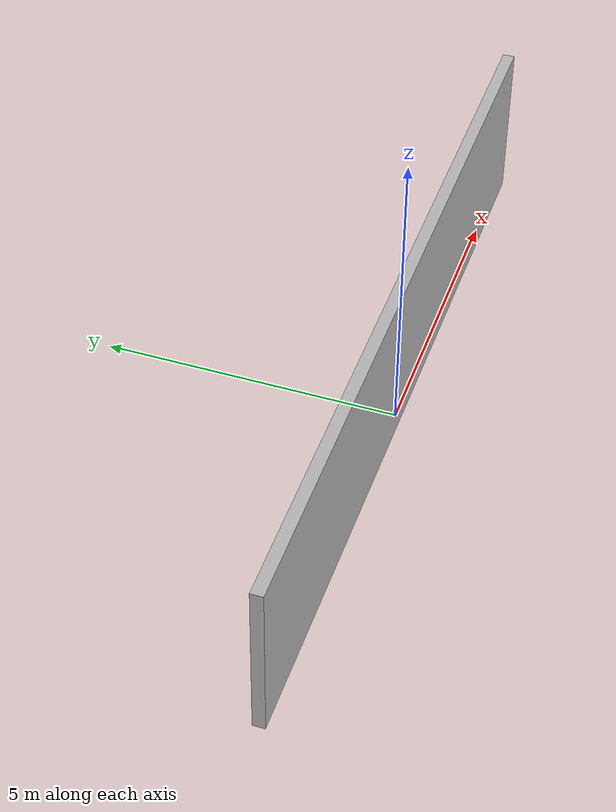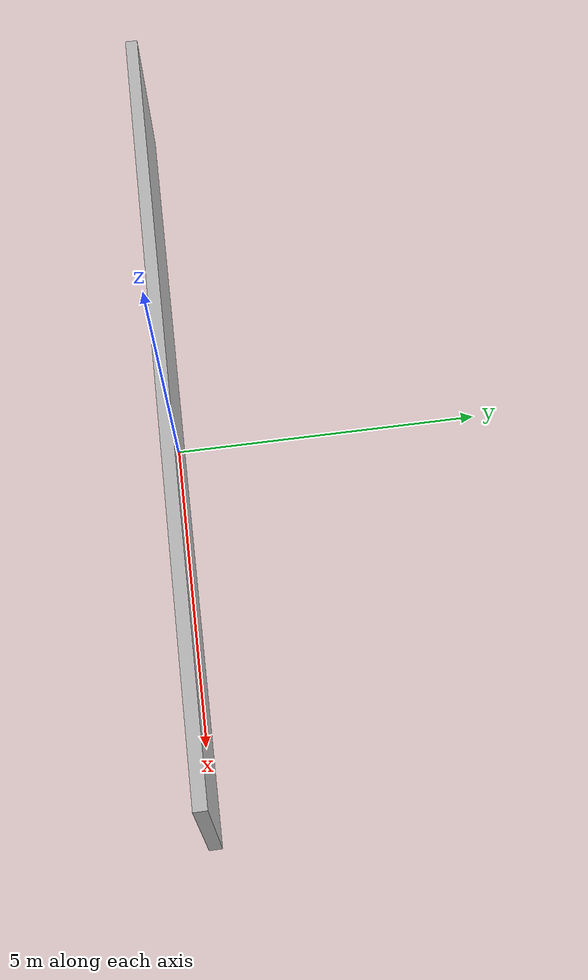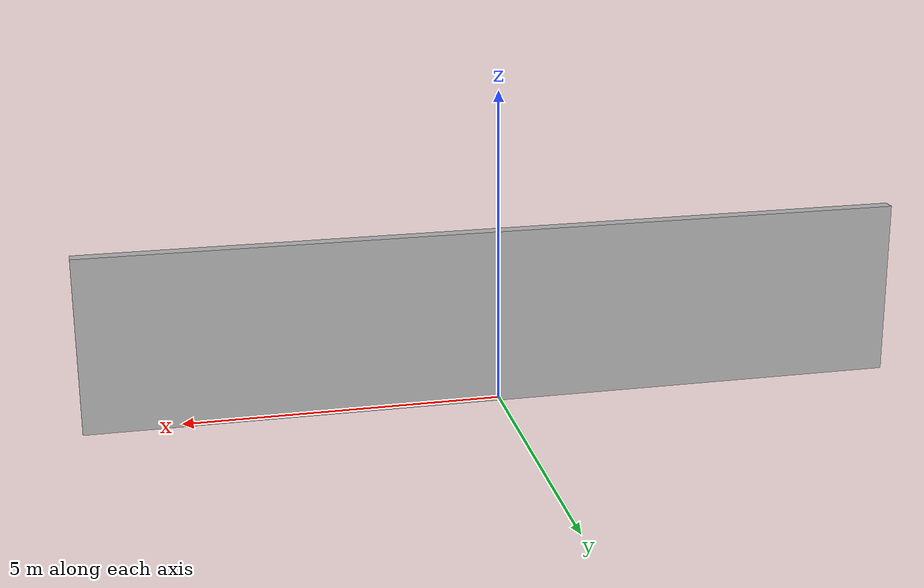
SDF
<?xml version="1.0" ?>
<sdf version="1.4">
  <model name="house">
    <static>true</static>
    <link name="link">
      <pose>0 0 1.4 0 0 0</pose>
      <collision name="collision">
        <geometry>
          <box>
            <size>13 0.2 2.8</size>
          </box>
        </geometry>
      </collision>
      <visual name="visual">
        <cast_shadows>false</cast_shadows>
        <geometry>
          <box>
            <size>13 0.2 2.8</size>
          </box>
        </geometry>
        <material>
          <script>
            <uri>model://house/materials/scripts</uri>
            <uri>model://house/materials/textures</uri>
            <name>vrc/house_wall16</name>
          </script>
        </material>
      </visual>
    </link>
  </model>
</sdf>
